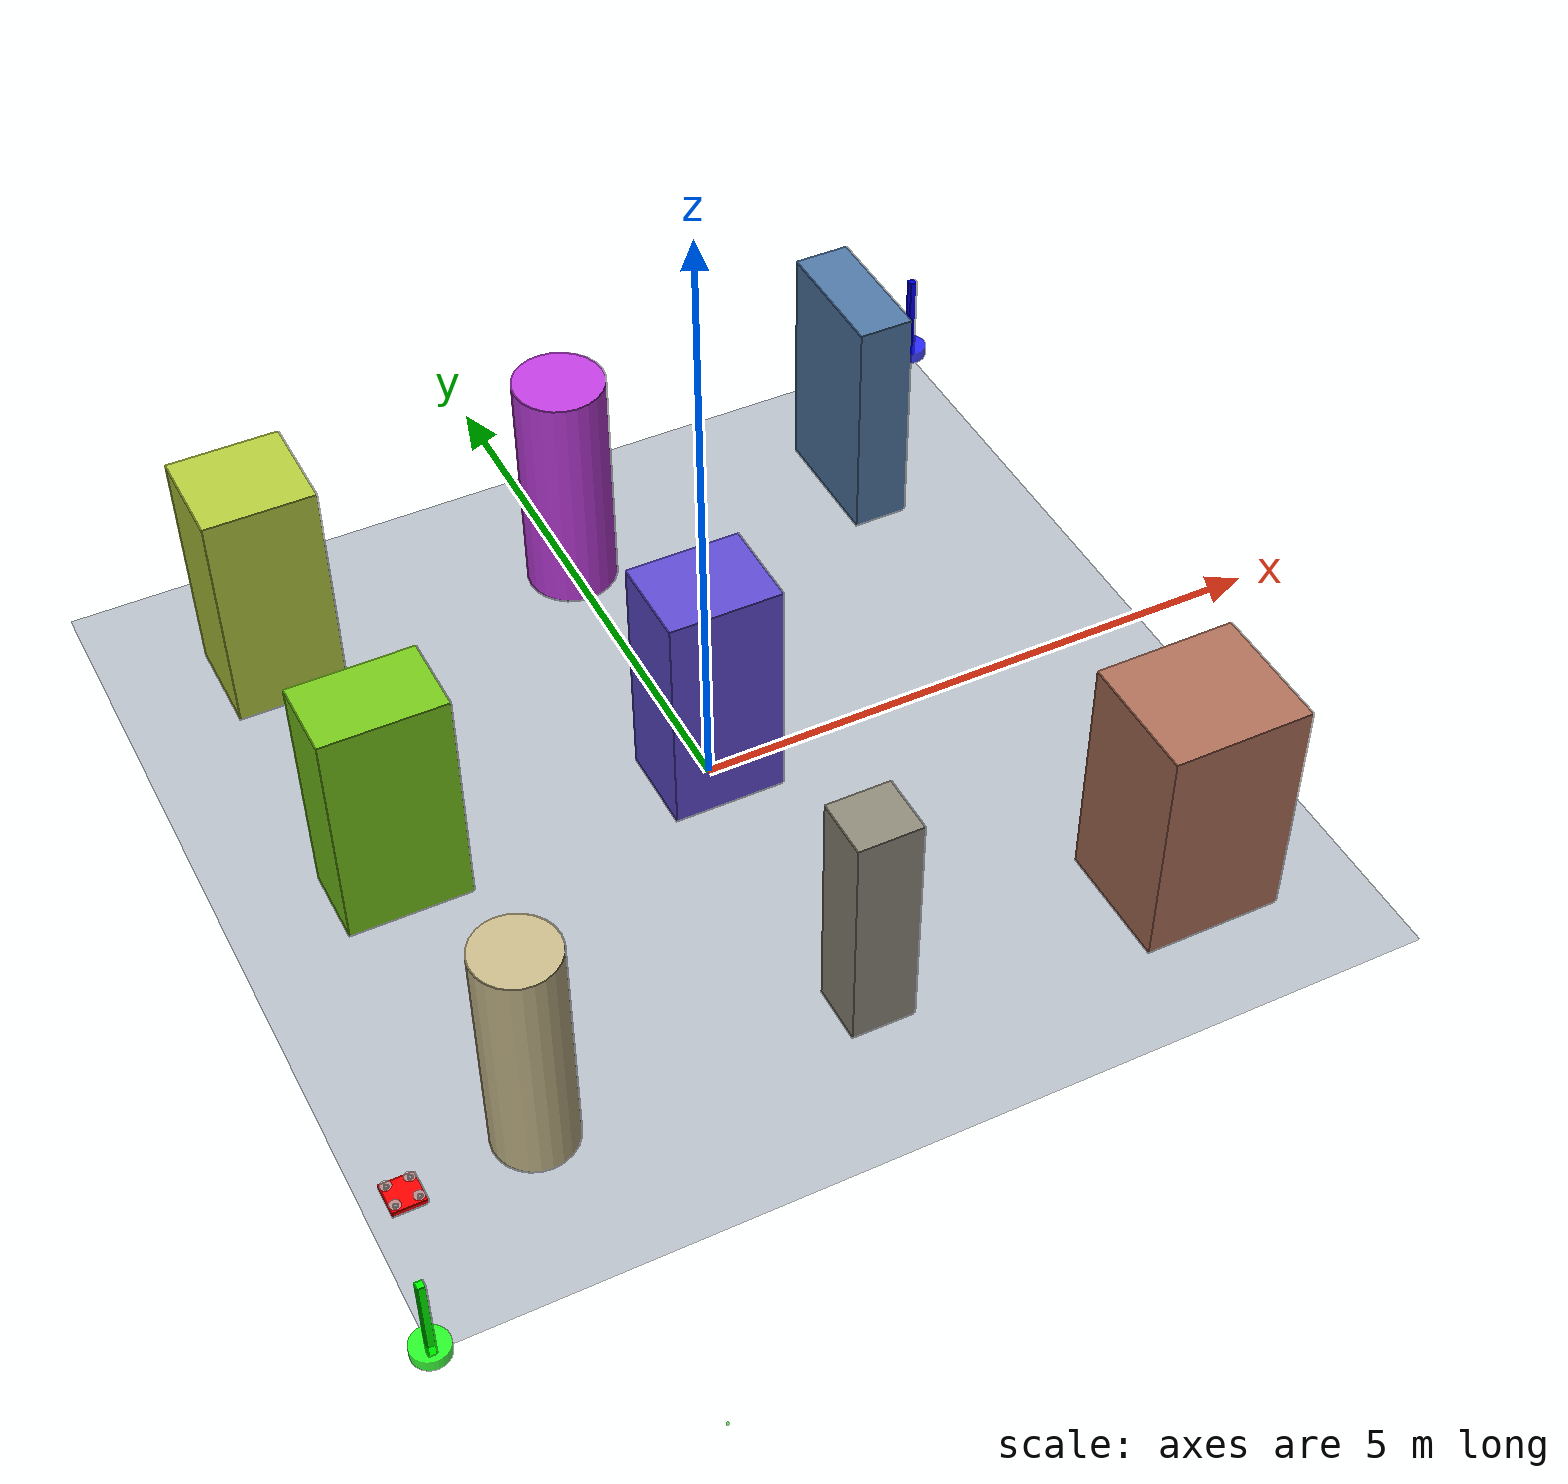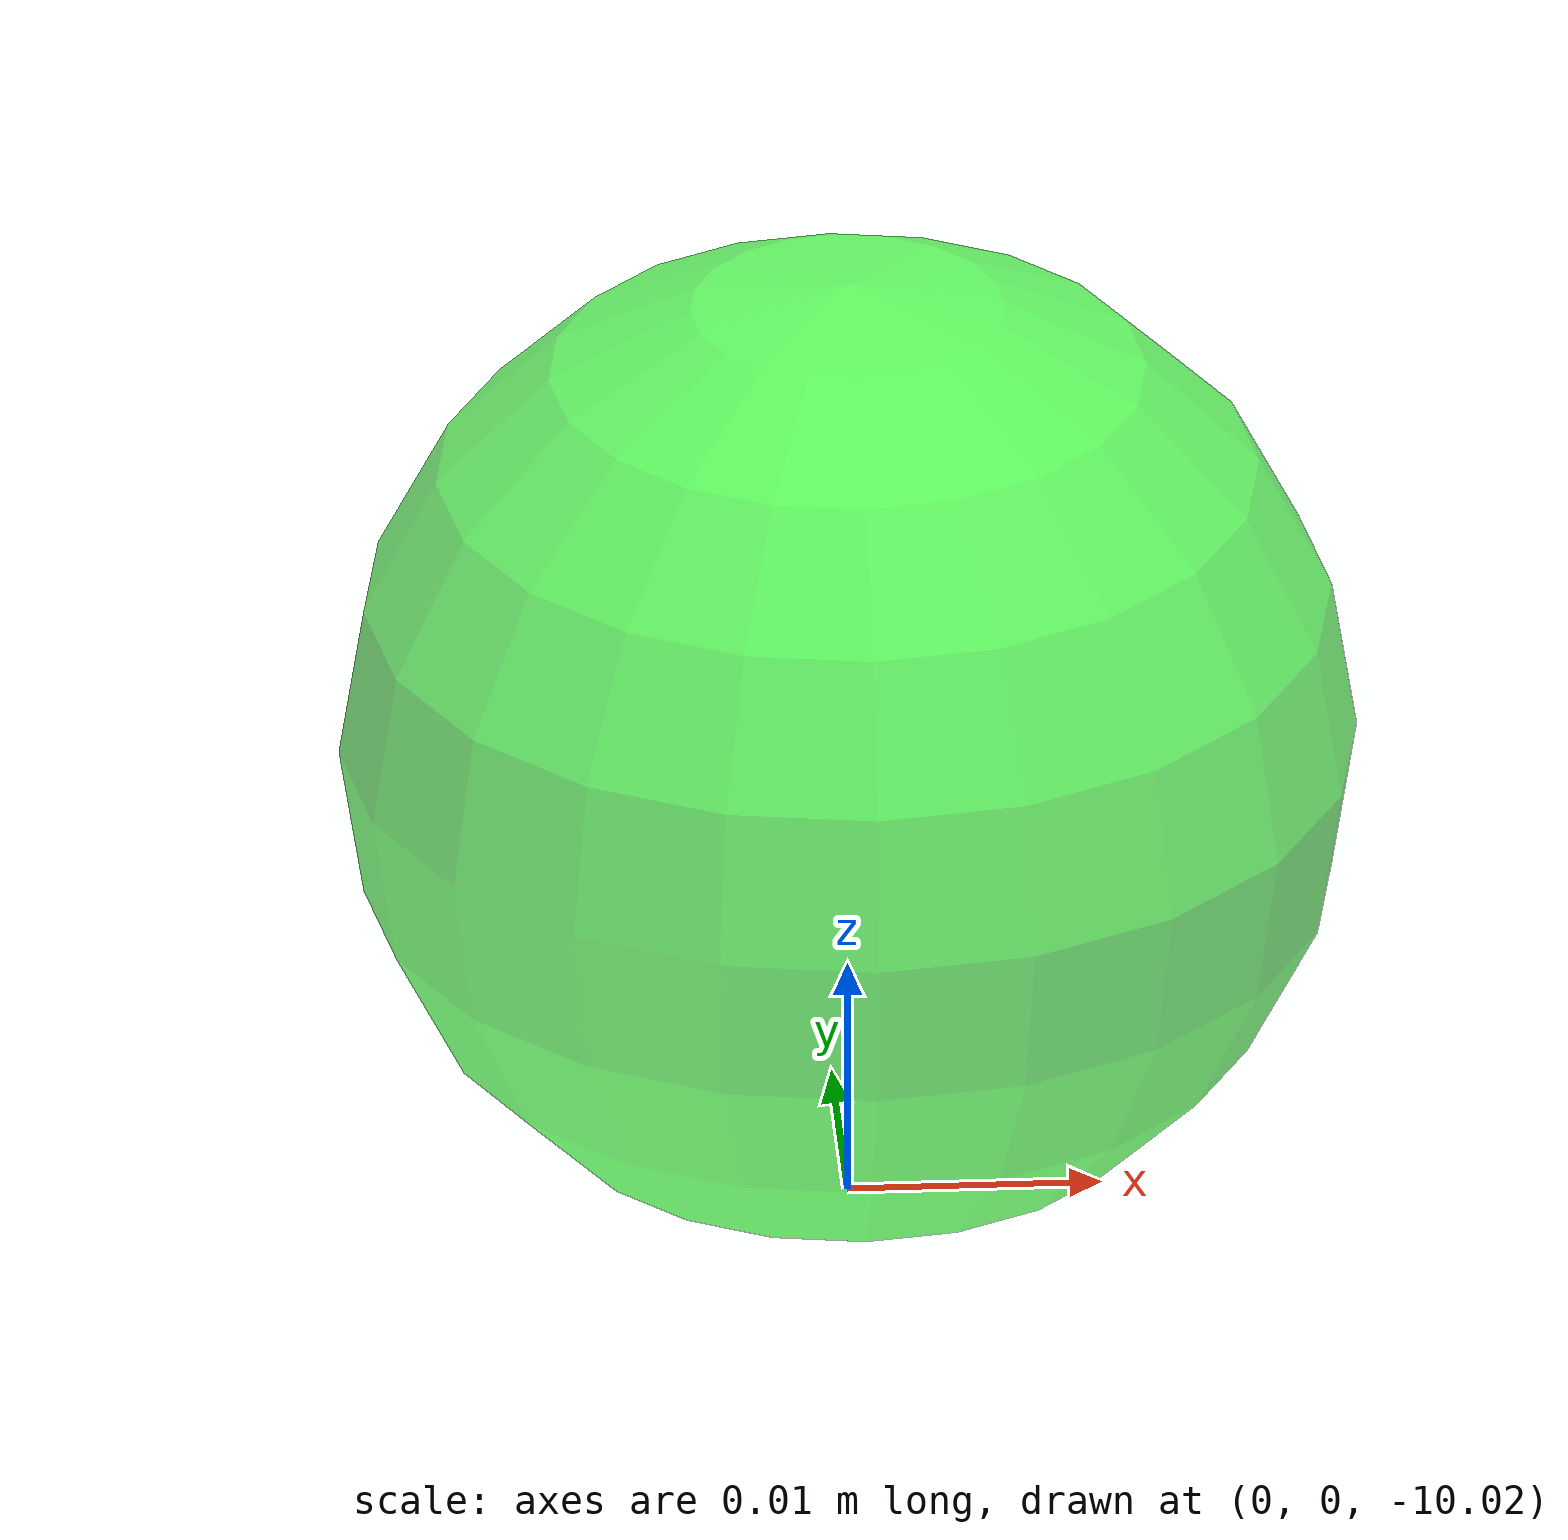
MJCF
<mujoco model="complex_uav_env">
  <compiler angle="degree" coordinate="local" inertiafromgeom="true"/>
  <option integrator="RK4" timestep="0.01"/>

  <visual>
    <headlight diffuse="0.6 0.6 0.6" ambient="0.3 0.3 0.3"/>
    <rgba haze="0.15 0.25 0.35 1"/>
    <global offwidth="2560" offheight="1440"/>
  </visual>

  <asset>
    <texture type="skybox" builtin="gradient" rgb1="0.3 0.5 0.7" rgb2="0 0 0" width="512" height="3072"/>
    <texture name="grid" type="2d" builtin="checker" rgb1="0.1 0.2 0.3" rgb2="0.2 0.3 0.4" width="512" height="512"/>
    <material name="grid" texture="grid" texrepeat="1 1" reflectance="0.2"/>
  </asset>

  <worldbody>
    <!-- Ground plane -->
    <geom name="ground" type="plane" size="4.0 4.0 0.1" material="grid"/>
    <light name="light1" pos="0 0 4" dir="0 0 -1" diffuse="1 1 1"/>

    <!-- Start position marker (green) -->
    <geom name="start_marker" type="cylinder" size="0.15 0.05" pos="-4.0 -4.0 0.05" rgba="0 1 0 0.8"/>
    <geom name="start_pole" type="box" size="0.03 0.03 0.4" pos="-4.0 -4.0 0.4" rgba="0 1 0 1"/>

    <!-- Goal position marker (blue) -->
    <geom name="goal_marker" type="cylinder" size="0.15 0.05" pos="4.0 4.0 0.05" rgba="0 0 1 0.8"/>
    <geom name="goal_pole" type="box" size="0.03 0.03 0.4" pos="4.0 4.0 0.4" rgba="0 0 1 1"/>

    <!-- UAV starting position -->
    <body name="chassis" pos="-4.0 -4.0 1.8">
      <joint type="free" name="root"/>
      <geom type="box" size="0.12 0.12 0.02" rgba="1.0 0.0 0.0 1.0" mass="0.8"/>

      <!-- Propeller arms and motors -->
      <geom type="box" size="0.08 0.01 0.005" pos="0 0 0.01" rgba="0.3 0.3 0.3 1"/>
      <geom type="box" size="0.01 0.08 0.005" pos="0 0 0.01" rgba="0.3 0.3 0.3 1"/>

      <!-- Motor visual geometry -->
      <geom type="cylinder" size="0.015 0.02" pos="0.08 0.08 0.015" rgba="0.2 0.2 0.2 1"/>
      <geom type="cylinder" size="0.015 0.02" pos="-0.08 0.08 0.015" rgba="0.2 0.2 0.2 1"/>
      <geom type="cylinder" size="0.015 0.02" pos="0.08 -0.08 0.015" rgba="0.2 0.2 0.2 1"/>
      <geom type="cylinder" size="0.015 0.02" pos="-0.08 -0.08 0.015" rgba="0.2 0.2 0.2 1"/>

      <!-- Propellers -->
      <geom type="cylinder" size="0.04 0.002" pos="0.08 0.08 0.035" rgba="0.7 0.7 0.7 0.8"/>
      <geom type="cylinder" size="0.04 0.002" pos="-0.08 0.08 0.035" rgba="0.7 0.7 0.7 0.8"/>
      <geom type="cylinder" size="0.04 0.002" pos="0.08 -0.08 0.035" rgba="0.7 0.7 0.7 0.8"/>
      <geom type="cylinder" size="0.04 0.002" pos="-0.08 -0.08 0.035" rgba="0.7 0.7 0.7 0.8"/>

      <!-- Sites for motor force application -->
      <site name="motor1" pos="0.08 0.08 0" size="0.01"/>
      <site name="motor2" pos="-0.08 0.08 0" size="0.01"/>
      <site name="motor3" pos="0.08 -0.08 0" size="0.01"/>
      <site name="motor4" pos="-0.08 -0.08 0" size="0.01"/>

      <!-- Depth camera sensor -->
      <camera name="depth_camera" pos="0 0 -0.05" euler="0 90 0" fovy="90" mode="fixed"/>
    </body>
    <geom name="static_obs_0" type="box" size="0.2598506245133797 0.24718735039952314 1.0" pos="0.0 -2.666666666666667 1.0" rgba="0.545668511821507 0.5326843602851029 0.4714136041836875 1.0"/>
    <geom name="static_obs_1" type="box" size="0.5097215856573584 0.3344865980291905 1.0" pos="-2.666666666666667 0.0 1.0" rgba="0.4623854166754252 0.7742232053016128 0.10591800930484362 1.0"/>
    <geom name="static_obs_2" type="cylinder" size="0.3302009294828237 1.0" pos="-2.666666666666667 -2.666666666666667 1.0" rgba="0.7746324285509688 0.7200718220227148 0.5383668644227115 1.0"/>
    <geom name="static_obs_3" type="box" size="0.46835922626101195 0.37998668585072076 1.0" pos="0.0 0.0 1.0" rgba="0.36744950432165047 0.2900570084271563 0.807797283638425 1.0"/>
    <geom name="static_obs_4" type="box" size="0.2355849226254388 0.5773309787715005 1.0" pos="2.666666666666666 2.666666666666666 1.0" rgba="0.3100733593461267 0.46495306715853457 0.643556523237736 1.0"/>
    <geom name="static_obs_5" type="box" size="0.46269511263013013 0.4301652503014999 1.0" pos="-2.666666666666667 2.666666666666666 1.0" rgba="0.6980262519912378 0.7885998660213507 0.23661312331285045 1.0"/>
    <geom name="static_obs_6" type="cylinder" size="0.3837021786030431 1.0" pos="0.0 2.666666666666666 1.0" rgba="0.7477574658552838 0.23756319227890313 0.8665417283387605 1.0"/>
    <geom name="static_obs_7" type="box" size="0.5696854560441573 0.5318358022606693 1.0" pos="2.666666666666666 -2.666666666666667 1.0" rgba="0.6740412731399996 0.430494362297975 0.3476743825001492 1.0"/>
    <geom name="trail_0" type="sphere" size="0.02" pos="0 0 -10" rgba="0 1 0 0.6" contype="0" conaffinity="0"/>
    <geom name="trail_1" type="sphere" size="0.02" pos="0 0 -10" rgba="0 1 0 0.6" contype="0" conaffinity="0"/>
    <geom name="trail_2" type="sphere" size="0.02" pos="0 0 -10" rgba="0 1 0 0.6" contype="0" conaffinity="0"/>
    <geom name="trail_3" type="sphere" size="0.02" pos="0 0 -10" rgba="0 1 0 0.6" contype="0" conaffinity="0"/>
    <geom name="trail_4" type="sphere" size="0.02" pos="0 0 -10" rgba="0 1 0 0.6" contype="0" conaffinity="0"/>
    <geom name="trail_5" type="sphere" size="0.02" pos="0 0 -10" rgba="0 1 0 0.6" contype="0" conaffinity="0"/>
    <geom name="trail_6" type="sphere" size="0.02" pos="0 0 -10" rgba="0 1 0 0.6" contype="0" conaffinity="0"/>
    <geom name="trail_7" type="sphere" size="0.02" pos="0 0 -10" rgba="0 1 0 0.6" contype="0" conaffinity="0"/>
    <geom name="trail_8" type="sphere" size="0.02" pos="0 0 -10" rgba="0 1 0 0.6" contype="0" conaffinity="0"/>
    <geom name="trail_9" type="sphere" size="0.02" pos="0 0 -10" rgba="0 1 0 0.6" contype="0" conaffinity="0"/>
    <geom name="trail_10" type="sphere" size="0.02" pos="0 0 -10" rgba="0 1 0 0.6" contype="0" conaffinity="0"/>
    <geom name="trail_11" type="sphere" size="0.02" pos="0 0 -10" rgba="0 1 0 0.6" contype="0" conaffinity="0"/>
    <geom name="trail_12" type="sphere" size="0.02" pos="0 0 -10" rgba="0 1 0 0.6" contype="0" conaffinity="0"/>
    <geom name="trail_13" type="sphere" size="0.02" pos="0 0 -10" rgba="0 1 0 0.6" contype="0" conaffinity="0"/>
    <geom name="trail_14" type="sphere" size="0.02" pos="0 0 -10" rgba="0 1 0 0.6" contype="0" conaffinity="0"/>
    <geom name="trail_15" type="sphere" size="0.02" pos="0 0 -10" rgba="0 1 0 0.6" contype="0" conaffinity="0"/>
    <geom name="trail_16" type="sphere" size="0.02" pos="0 0 -10" rgba="0 1 0 0.6" contype="0" conaffinity="0"/>
    <geom name="trail_17" type="sphere" size="0.02" pos="0 0 -10" rgba="0 1 0 0.6" contype="0" conaffinity="0"/>
    <geom name="trail_18" type="sphere" size="0.02" pos="0 0 -10" rgba="0 1 0 0.6" contype="0" conaffinity="0"/>
    <geom name="trail_19" type="sphere" size="0.02" pos="0 0 -10" rgba="0 1 0 0.6" contype="0" conaffinity="0"/>
    <geom name="trail_20" type="sphere" size="0.02" pos="0 0 -10" rgba="0 1 0 0.6" contype="0" conaffinity="0"/>
    <geom name="trail_21" type="sphere" size="0.02" pos="0 0 -10" rgba="0 1 0 0.6" contype="0" conaffinity="0"/>
    <geom name="trail_22" type="sphere" size="0.02" pos="0 0 -10" rgba="0 1 0 0.6" contype="0" conaffinity="0"/>
    <geom name="trail_23" type="sphere" size="0.02" pos="0 0 -10" rgba="0 1 0 0.6" contype="0" conaffinity="0"/>
    <geom name="trail_24" type="sphere" size="0.02" pos="0 0 -10" rgba="0 1 0 0.6" contype="0" conaffinity="0"/>
    <geom name="trail_25" type="sphere" size="0.02" pos="0 0 -10" rgba="0 1 0 0.6" contype="0" conaffinity="0"/>
    <geom name="trail_26" type="sphere" size="0.02" pos="0 0 -10" rgba="0 1 0 0.6" contype="0" conaffinity="0"/>
    <geom name="trail_27" type="sphere" size="0.02" pos="0 0 -10" rgba="0 1 0 0.6" contype="0" conaffinity="0"/>
    <geom name="trail_28" type="sphere" size="0.02" pos="0 0 -10" rgba="0 1 0 0.6" contype="0" conaffinity="0"/>
    <geom name="trail_29" type="sphere" size="0.02" pos="0 0 -10" rgba="0 1 0 0.6" contype="0" conaffinity="0"/>
    <geom name="trail_30" type="sphere" size="0.02" pos="0 0 -10" rgba="0 1 0 0.6" contype="0" conaffinity="0"/>
    <geom name="trail_31" type="sphere" size="0.02" pos="0 0 -10" rgba="0 1 0 0.6" contype="0" conaffinity="0"/>
    <geom name="trail_32" type="sphere" size="0.02" pos="0 0 -10" rgba="0 1 0 0.6" contype="0" conaffinity="0"/>
    <geom name="trail_33" type="sphere" size="0.02" pos="0 0 -10" rgba="0 1 0 0.6" contype="0" conaffinity="0"/>
    <geom name="trail_34" type="sphere" size="0.02" pos="0 0 -10" rgba="0 1 0 0.6" contype="0" conaffinity="0"/>
    <geom name="trail_35" type="sphere" size="0.02" pos="0 0 -10" rgba="0 1 0 0.6" contype="0" conaffinity="0"/>
    <geom name="trail_36" type="sphere" size="0.02" pos="0 0 -10" rgba="0 1 0 0.6" contype="0" conaffinity="0"/>
    <geom name="trail_37" type="sphere" size="0.02" pos="0 0 -10" rgba="0 1 0 0.6" contype="0" conaffinity="0"/>
    <geom name="trail_38" type="sphere" size="0.02" pos="0 0 -10" rgba="0 1 0 0.6" contype="0" conaffinity="0"/>
    <geom name="trail_39" type="sphere" size="0.02" pos="0 0 -10" rgba="0 1 0 0.6" contype="0" conaffinity="0"/>
    <geom name="trail_40" type="sphere" size="0.02" pos="0 0 -10" rgba="0 1 0 0.6" contype="0" conaffinity="0"/>
    <geom name="trail_41" type="sphere" size="0.02" pos="0 0 -10" rgba="0 1 0 0.6" contype="0" conaffinity="0"/>
    <geom name="trail_42" type="sphere" size="0.02" pos="0 0 -10" rgba="0 1 0 0.6" contype="0" conaffinity="0"/>
    <geom name="trail_43" type="sphere" size="0.02" pos="0 0 -10" rgba="0 1 0 0.6" contype="0" conaffinity="0"/>
    <geom name="trail_44" type="sphere" size="0.02" pos="0 0 -10" rgba="0 1 0 0.6" contype="0" conaffinity="0"/>
    <geom name="trail_45" type="sphere" size="0.02" pos="0 0 -10" rgba="0 1 0 0.6" contype="0" conaffinity="0"/>
    <geom name="trail_46" type="sphere" size="0.02" pos="0 0 -10" rgba="0 1 0 0.6" contype="0" conaffinity="0"/>
    <geom name="trail_47" type="sphere" size="0.02" pos="0 0 -10" rgba="0 1 0 0.6" contype="0" conaffinity="0"/>
    <geom name="trail_48" type="sphere" size="0.02" pos="0 0 -10" rgba="0 1 0 0.6" contype="0" conaffinity="0"/>
    <geom name="trail_49" type="sphere" size="0.02" pos="0 0 -10" rgba="0 1 0 0.6" contype="0" conaffinity="0"/>
    <geom name="trail_50" type="sphere" size="0.02" pos="0 0 -10" rgba="0 1 0 0.6" contype="0" conaffinity="0"/>
    <geom name="trail_51" type="sphere" size="0.02" pos="0 0 -10" rgba="0 1 0 0.6" contype="0" conaffinity="0"/>
    <geom name="trail_52" type="sphere" size="0.02" pos="0 0 -10" rgba="0 1 0 0.6" contype="0" conaffinity="0"/>
    <geom name="trail_53" type="sphere" size="0.02" pos="0 0 -10" rgba="0 1 0 0.6" contype="0" conaffinity="0"/>
    <geom name="trail_54" type="sphere" size="0.02" pos="0 0 -10" rgba="0 1 0 0.6" contype="0" conaffinity="0"/>
    <geom name="trail_55" type="sphere" size="0.02" pos="0 0 -10" rgba="0 1 0 0.6" contype="0" conaffinity="0"/>
    <geom name="trail_56" type="sphere" size="0.02" pos="0 0 -10" rgba="0 1 0 0.6" contype="0" conaffinity="0"/>
    <geom name="trail_57" type="sphere" size="0.02" pos="0 0 -10" rgba="0 1 0 0.6" contype="0" conaffinity="0"/>
    <geom name="trail_58" type="sphere" size="0.02" pos="0 0 -10" rgba="0 1 0 0.6" contype="0" conaffinity="0"/>
    <geom name="trail_59" type="sphere" size="0.02" pos="0 0 -10" rgba="0 1 0 0.6" contype="0" conaffinity="0"/>
    <geom name="trail_60" type="sphere" size="0.02" pos="0 0 -10" rgba="0 1 0 0.6" contype="0" conaffinity="0"/>
    <geom name="trail_61" type="sphere" size="0.02" pos="0 0 -10" rgba="0 1 0 0.6" contype="0" conaffinity="0"/>
    <geom name="trail_62" type="sphere" size="0.02" pos="0 0 -10" rgba="0 1 0 0.6" contype="0" conaffinity="0"/>
    <geom name="trail_63" type="sphere" size="0.02" pos="0 0 -10" rgba="0 1 0 0.6" contype="0" conaffinity="0"/>
    <geom name="trail_64" type="sphere" size="0.02" pos="0 0 -10" rgba="0 1 0 0.6" contype="0" conaffinity="0"/>
    <geom name="trail_65" type="sphere" size="0.02" pos="0 0 -10" rgba="0 1 0 0.6" contype="0" conaffinity="0"/>
    <geom name="trail_66" type="sphere" size="0.02" pos="0 0 -10" rgba="0 1 0 0.6" contype="0" conaffinity="0"/>
    <geom name="trail_67" type="sphere" size="0.02" pos="0 0 -10" rgba="0 1 0 0.6" contype="0" conaffinity="0"/>
    <geom name="trail_68" type="sphere" size="0.02" pos="0 0 -10" rgba="0 1 0 0.6" contype="0" conaffinity="0"/>
    <geom name="trail_69" type="sphere" size="0.02" pos="0 0 -10" rgba="0 1 0 0.6" contype="0" conaffinity="0"/>
    <geom name="trail_70" type="sphere" size="0.02" pos="0 0 -10" rgba="0 1 0 0.6" contype="0" conaffinity="0"/>
    <geom name="trail_71" type="sphere" size="0.02" pos="0 0 -10" rgba="0 1 0 0.6" contype="0" conaffinity="0"/>
    <geom name="trail_72" type="sphere" size="0.02" pos="0 0 -10" rgba="0 1 0 0.6" contype="0" conaffinity="0"/>
    <geom name="trail_73" type="sphere" size="0.02" pos="0 0 -10" rgba="0 1 0 0.6" contype="0" conaffinity="0"/>
    <geom name="trail_74" type="sphere" size="0.02" pos="0 0 -10" rgba="0 1 0 0.6" contype="0" conaffinity="0"/>
    <geom name="trail_75" type="sphere" size="0.02" pos="0 0 -10" rgba="0 1 0 0.6" contype="0" conaffinity="0"/>
    <geom name="trail_76" type="sphere" size="0.02" pos="0 0 -10" rgba="0 1 0 0.6" contype="0" conaffinity="0"/>
    <geom name="trail_77" type="sphere" size="0.02" pos="0 0 -10" rgba="0 1 0 0.6" contype="0" conaffinity="0"/>
    <geom name="trail_78" type="sphere" size="0.02" pos="0 0 -10" rgba="0 1 0 0.6" contype="0" conaffinity="0"/>
    <geom name="trail_79" type="sphere" size="0.02" pos="0 0 -10" rgba="0 1 0 0.6" contype="0" conaffinity="0"/>
    <geom name="trail_80" type="sphere" size="0.02" pos="0 0 -10" rgba="0 1 0 0.6" contype="0" conaffinity="0"/>
    <geom name="trail_81" type="sphere" size="0.02" pos="0 0 -10" rgba="0 1 0 0.6" contype="0" conaffinity="0"/>
    <geom name="trail_82" type="sphere" size="0.02" pos="0 0 -10" rgba="0 1 0 0.6" contype="0" conaffinity="0"/>
    <geom name="trail_83" type="sphere" size="0.02" pos="0 0 -10" rgba="0 1 0 0.6" contype="0" conaffinity="0"/>
    <geom name="trail_84" type="sphere" size="0.02" pos="0 0 -10" rgba="0 1 0 0.6" contype="0" conaffinity="0"/>
    <geom name="trail_85" type="sphere" size="0.02" pos="0 0 -10" rgba="0 1 0 0.6" contype="0" conaffinity="0"/>
    <geom name="trail_86" type="sphere" size="0.02" pos="0 0 -10" rgba="0 1 0 0.6" contype="0" conaffinity="0"/>
    <geom name="trail_87" type="sphere" size="0.02" pos="0 0 -10" rgba="0 1 0 0.6" contype="0" conaffinity="0"/>
    <geom name="trail_88" type="sphere" size="0.02" pos="0 0 -10" rgba="0 1 0 0.6" contype="0" conaffinity="0"/>
    <geom name="trail_89" type="sphere" size="0.02" pos="0 0 -10" rgba="0 1 0 0.6" contype="0" conaffinity="0"/>
    <geom name="trail_90" type="sphere" size="0.02" pos="0 0 -10" rgba="0 1 0 0.6" contype="0" conaffinity="0"/>
    <geom name="trail_91" type="sphere" size="0.02" pos="0 0 -10" rgba="0 1 0 0.6" contype="0" conaffinity="0"/>
    <geom name="trail_92" type="sphere" size="0.02" pos="0 0 -10" rgba="0 1 0 0.6" contype="0" conaffinity="0"/>
    <geom name="trail_93" type="sphere" size="0.02" pos="0 0 -10" rgba="0 1 0 0.6" contype="0" conaffinity="0"/>
    <geom name="trail_94" type="sphere" size="0.02" pos="0 0 -10" rgba="0 1 0 0.6" contype="0" conaffinity="0"/>
    <geom name="trail_95" type="sphere" size="0.02" pos="0 0 -10" rgba="0 1 0 0.6" contype="0" conaffinity="0"/>
    <geom name="trail_96" type="sphere" size="0.02" pos="0 0 -10" rgba="0 1 0 0.6" contype="0" conaffinity="0"/>
    <geom name="trail_97" type="sphere" size="0.02" pos="0 0 -10" rgba="0 1 0 0.6" contype="0" conaffinity="0"/>
    <geom name="trail_98" type="sphere" size="0.02" pos="0 0 -10" rgba="0 1 0 0.6" contype="0" conaffinity="0"/>
    <geom name="trail_99" type="sphere" size="0.02" pos="0 0 -10" rgba="0 1 0 0.6" contype="0" conaffinity="0"/>
    <geom name="trail_100" type="sphere" size="0.02" pos="0 0 -10" rgba="0 1 0 0.6" contype="0" conaffinity="0"/>
    <geom name="trail_101" type="sphere" size="0.02" pos="0 0 -10" rgba="0 1 0 0.6" contype="0" conaffinity="0"/>
    <geom name="trail_102" type="sphere" size="0.02" pos="0 0 -10" rgba="0 1 0 0.6" contype="0" conaffinity="0"/>
    <geom name="trail_103" type="sphere" size="0.02" pos="0 0 -10" rgba="0 1 0 0.6" contype="0" conaffinity="0"/>
    <geom name="trail_104" type="sphere" size="0.02" pos="0 0 -10" rgba="0 1 0 0.6" contype="0" conaffinity="0"/>
    <geom name="trail_105" type="sphere" size="0.02" pos="0 0 -10" rgba="0 1 0 0.6" contype="0" conaffinity="0"/>
    <geom name="trail_106" type="sphere" size="0.02" pos="0 0 -10" rgba="0 1 0 0.6" contype="0" conaffinity="0"/>
    <geom name="trail_107" type="sphere" size="0.02" pos="0 0 -10" rgba="0 1 0 0.6" contype="0" conaffinity="0"/>
    <geom name="trail_108" type="sphere" size="0.02" pos="0 0 -10" rgba="0 1 0 0.6" contype="0" conaffinity="0"/>
    <geom name="trail_109" type="sphere" size="0.02" pos="0 0 -10" rgba="0 1 0 0.6" contype="0" conaffinity="0"/>
    <geom name="trail_110" type="sphere" size="0.02" pos="0 0 -10" rgba="0 1 0 0.6" contype="0" conaffinity="0"/>
    <geom name="trail_111" type="sphere" size="0.02" pos="0 0 -10" rgba="0 1 0 0.6" contype="0" conaffinity="0"/>
    <geom name="trail_112" type="sphere" size="0.02" pos="0 0 -10" rgba="0 1 0 0.6" contype="0" conaffinity="0"/>
    <geom name="trail_113" type="sphere" size="0.02" pos="0 0 -10" rgba="0 1 0 0.6" contype="0" conaffinity="0"/>
    <geom name="trail_114" type="sphere" size="0.02" pos="0 0 -10" rgba="0 1 0 0.6" contype="0" conaffinity="0"/>
    <geom name="trail_115" type="sphere" size="0.02" pos="0 0 -10" rgba="0 1 0 0.6" contype="0" conaffinity="0"/>
    <geom name="trail_116" type="sphere" size="0.02" pos="0 0 -10" rgba="0 1 0 0.6" contype="0" conaffinity="0"/>
    <geom name="trail_117" type="sphere" size="0.02" pos="0 0 -10" rgba="0 1 0 0.6" contype="0" conaffinity="0"/>
    <geom name="trail_118" type="sphere" size="0.02" pos="0 0 -10" rgba="0 1 0 0.6" contype="0" conaffinity="0"/>
    <geom name="trail_119" type="sphere" size="0.02" pos="0 0 -10" rgba="0 1 0 0.6" contype="0" conaffinity="0"/>
    <geom name="trail_120" type="sphere" size="0.02" pos="0 0 -10" rgba="0 1 0 0.6" contype="0" conaffinity="0"/>
    <geom name="trail_121" type="sphere" size="0.02" pos="0 0 -10" rgba="0 1 0 0.6" contype="0" conaffinity="0"/>
    <geom name="trail_122" type="sphere" size="0.02" pos="0 0 -10" rgba="0 1 0 0.6" contype="0" conaffinity="0"/>
    <geom name="trail_123" type="sphere" size="0.02" pos="0 0 -10" rgba="0 1 0 0.6" contype="0" conaffinity="0"/>
    <geom name="trail_124" type="sphere" size="0.02" pos="0 0 -10" rgba="0 1 0 0.6" contype="0" conaffinity="0"/>
    <geom name="trail_125" type="sphere" size="0.02" pos="0 0 -10" rgba="0 1 0 0.6" contype="0" conaffinity="0"/>
    <geom name="trail_126" type="sphere" size="0.02" pos="0 0 -10" rgba="0 1 0 0.6" contype="0" conaffinity="0"/>
    <geom name="trail_127" type="sphere" size="0.02" pos="0 0 -10" rgba="0 1 0 0.6" contype="0" conaffinity="0"/>
    <geom name="trail_128" type="sphere" size="0.02" pos="0 0 -10" rgba="0 1 0 0.6" contype="0" conaffinity="0"/>
    <geom name="trail_129" type="sphere" size="0.02" pos="0 0 -10" rgba="0 1 0 0.6" contype="0" conaffinity="0"/>
    <geom name="trail_130" type="sphere" size="0.02" pos="0 0 -10" rgba="0 1 0 0.6" contype="0" conaffinity="0"/>
    <geom name="trail_131" type="sphere" size="0.02" pos="0 0 -10" rgba="0 1 0 0.6" contype="0" conaffinity="0"/>
    <geom name="trail_132" type="sphere" size="0.02" pos="0 0 -10" rgba="0 1 0 0.6" contype="0" conaffinity="0"/>
    <geom name="trail_133" type="sphere" size="0.02" pos="0 0 -10" rgba="0 1 0 0.6" contype="0" conaffinity="0"/>
    <geom name="trail_134" type="sphere" size="0.02" pos="0 0 -10" rgba="0 1 0 0.6" contype="0" conaffinity="0"/>
    <geom name="trail_135" type="sphere" size="0.02" pos="0 0 -10" rgba="0 1 0 0.6" contype="0" conaffinity="0"/>
    <geom name="trail_136" type="sphere" size="0.02" pos="0 0 -10" rgba="0 1 0 0.6" contype="0" conaffinity="0"/>
    <geom name="trail_137" type="sphere" size="0.02" pos="0 0 -10" rgba="0 1 0 0.6" contype="0" conaffinity="0"/>
    <geom name="trail_138" type="sphere" size="0.02" pos="0 0 -10" rgba="0 1 0 0.6" contype="0" conaffinity="0"/>
    <geom name="trail_139" type="sphere" size="0.02" pos="0 0 -10" rgba="0 1 0 0.6" contype="0" conaffinity="0"/>
    <geom name="trail_140" type="sphere" size="0.02" pos="0 0 -10" rgba="0 1 0 0.6" contype="0" conaffinity="0"/>
    <geom name="trail_141" type="sphere" size="0.02" pos="0 0 -10" rgba="0 1 0 0.6" contype="0" conaffinity="0"/>
    <geom name="trail_142" type="sphere" size="0.02" pos="0 0 -10" rgba="0 1 0 0.6" contype="0" conaffinity="0"/>
    <geom name="trail_143" type="sphere" size="0.02" pos="0 0 -10" rgba="0 1 0 0.6" contype="0" conaffinity="0"/>
    <geom name="trail_144" type="sphere" size="0.02" pos="0 0 -10" rgba="0 1 0 0.6" contype="0" conaffinity="0"/>
    <geom name="trail_145" type="sphere" size="0.02" pos="0 0 -10" rgba="0 1 0 0.6" contype="0" conaffinity="0"/>
    <geom name="trail_146" type="sphere" size="0.02" pos="0 0 -10" rgba="0 1 0 0.6" contype="0" conaffinity="0"/>
    <geom name="trail_147" type="sphere" size="0.02" pos="0 0 -10" rgba="0 1 0 0.6" contype="0" conaffinity="0"/>
    <geom name="trail_148" type="sphere" size="0.02" pos="0 0 -10" rgba="0 1 0 0.6" contype="0" conaffinity="0"/>
    <geom name="trail_149" type="sphere" size="0.02" pos="0 0 -10" rgba="0 1 0 0.6" contype="0" conaffinity="0"/>
    <geom name="trail_150" type="sphere" size="0.02" pos="0 0 -10" rgba="0 1 0 0.6" contype="0" conaffinity="0"/>
    <geom name="trail_151" type="sphere" size="0.02" pos="0 0 -10" rgba="0 1 0 0.6" contype="0" conaffinity="0"/>
    <geom name="trail_152" type="sphere" size="0.02" pos="0 0 -10" rgba="0 1 0 0.6" contype="0" conaffinity="0"/>
    <geom name="trail_153" type="sphere" size="0.02" pos="0 0 -10" rgba="0 1 0 0.6" contype="0" conaffinity="0"/>
    <geom name="trail_154" type="sphere" size="0.02" pos="0 0 -10" rgba="0 1 0 0.6" contype="0" conaffinity="0"/>
    <geom name="trail_155" type="sphere" size="0.02" pos="0 0 -10" rgba="0 1 0 0.6" contype="0" conaffinity="0"/>
    <geom name="trail_156" type="sphere" size="0.02" pos="0 0 -10" rgba="0 1 0 0.6" contype="0" conaffinity="0"/>
    <geom name="trail_157" type="sphere" size="0.02" pos="0 0 -10" rgba="0 1 0 0.6" contype="0" conaffinity="0"/>
    <geom name="trail_158" type="sphere" size="0.02" pos="0 0 -10" rgba="0 1 0 0.6" contype="0" conaffinity="0"/>
    <geom name="trail_159" type="sphere" size="0.02" pos="0 0 -10" rgba="0 1 0 0.6" contype="0" conaffinity="0"/>
    <geom name="trail_160" type="sphere" size="0.02" pos="0 0 -10" rgba="0 1 0 0.6" contype="0" conaffinity="0"/>
    <geom name="trail_161" type="sphere" size="0.02" pos="0 0 -10" rgba="0 1 0 0.6" contype="0" conaffinity="0"/>
    <geom name="trail_162" type="sphere" size="0.02" pos="0 0 -10" rgba="0 1 0 0.6" contype="0" conaffinity="0"/>
    <geom name="trail_163" type="sphere" size="0.02" pos="0 0 -10" rgba="0 1 0 0.6" contype="0" conaffinity="0"/>
    <geom name="trail_164" type="sphere" size="0.02" pos="0 0 -10" rgba="0 1 0 0.6" contype="0" conaffinity="0"/>
    <geom name="trail_165" type="sphere" size="0.02" pos="0 0 -10" rgba="0 1 0 0.6" contype="0" conaffinity="0"/>
    <geom name="trail_166" type="sphere" size="0.02" pos="0 0 -10" rgba="0 1 0 0.6" contype="0" conaffinity="0"/>
    <geom name="trail_167" type="sphere" size="0.02" pos="0 0 -10" rgba="0 1 0 0.6" contype="0" conaffinity="0"/>
    <geom name="trail_168" type="sphere" size="0.02" pos="0 0 -10" rgba="0 1 0 0.6" contype="0" conaffinity="0"/>
    <geom name="trail_169" type="sphere" size="0.02" pos="0 0 -10" rgba="0 1 0 0.6" contype="0" conaffinity="0"/>
    <geom name="trail_170" type="sphere" size="0.02" pos="0 0 -10" rgba="0 1 0 0.6" contype="0" conaffinity="0"/>
    <geom name="trail_171" type="sphere" size="0.02" pos="0 0 -10" rgba="0 1 0 0.6" contype="0" conaffinity="0"/>
    <geom name="trail_172" type="sphere" size="0.02" pos="0 0 -10" rgba="0 1 0 0.6" contype="0" conaffinity="0"/>
    <geom name="trail_173" type="sphere" size="0.02" pos="0 0 -10" rgba="0 1 0 0.6" contype="0" conaffinity="0"/>
    <geom name="trail_174" type="sphere" size="0.02" pos="0 0 -10" rgba="0 1 0 0.6" contype="0" conaffinity="0"/>
    <geom name="trail_175" type="sphere" size="0.02" pos="0 0 -10" rgba="0 1 0 0.6" contype="0" conaffinity="0"/>
    <geom name="trail_176" type="sphere" size="0.02" pos="0 0 -10" rgba="0 1 0 0.6" contype="0" conaffinity="0"/>
    <geom name="trail_177" type="sphere" size="0.02" pos="0 0 -10" rgba="0 1 0 0.6" contype="0" conaffinity="0"/>
    <geom name="trail_178" type="sphere" size="0.02" pos="0 0 -10" rgba="0 1 0 0.6" contype="0" conaffinity="0"/>
    <geom name="trail_179" type="sphere" size="0.02" pos="0 0 -10" rgba="0 1 0 0.6" contype="0" conaffinity="0"/>
    <geom name="trail_180" type="sphere" size="0.02" pos="0 0 -10" rgba="0 1 0 0.6" contype="0" conaffinity="0"/>
    <geom name="trail_181" type="sphere" size="0.02" pos="0 0 -10" rgba="0 1 0 0.6" contype="0" conaffinity="0"/>
    <geom name="trail_182" type="sphere" size="0.02" pos="0 0 -10" rgba="0 1 0 0.6" contype="0" conaffinity="0"/>
    <geom name="trail_183" type="sphere" size="0.02" pos="0 0 -10" rgba="0 1 0 0.6" contype="0" conaffinity="0"/>
    <geom name="trail_184" type="sphere" size="0.02" pos="0 0 -10" rgba="0 1 0 0.6" contype="0" conaffinity="0"/>
    <geom name="trail_185" type="sphere" size="0.02" pos="0 0 -10" rgba="0 1 0 0.6" contype="0" conaffinity="0"/>
    <geom name="trail_186" type="sphere" size="0.02" pos="0 0 -10" rgba="0 1 0 0.6" contype="0" conaffinity="0"/>
    <geom name="trail_187" type="sphere" size="0.02" pos="0 0 -10" rgba="0 1 0 0.6" contype="0" conaffinity="0"/>
    <geom name="trail_188" type="sphere" size="0.02" pos="0 0 -10" rgba="0 1 0 0.6" contype="0" conaffinity="0"/>
    <geom name="trail_189" type="sphere" size="0.02" pos="0 0 -10" rgba="0 1 0 0.6" contype="0" conaffinity="0"/>
    <geom name="trail_190" type="sphere" size="0.02" pos="0 0 -10" rgba="0 1 0 0.6" contype="0" conaffinity="0"/>
    <geom name="trail_191" type="sphere" size="0.02" pos="0 0 -10" rgba="0 1 0 0.6" contype="0" conaffinity="0"/>
    <geom name="trail_192" type="sphere" size="0.02" pos="0 0 -10" rgba="0 1 0 0.6" contype="0" conaffinity="0"/>
    <geom name="trail_193" type="sphere" size="0.02" pos="0 0 -10" rgba="0 1 0 0.6" contype="0" conaffinity="0"/>
    <geom name="trail_194" type="sphere" size="0.02" pos="0 0 -10" rgba="0 1 0 0.6" contype="0" conaffinity="0"/>
    <geom name="trail_195" type="sphere" size="0.02" pos="0 0 -10" rgba="0 1 0 0.6" contype="0" conaffinity="0"/>
    <geom name="trail_196" type="sphere" size="0.02" pos="0 0 -10" rgba="0 1 0 0.6" contype="0" conaffinity="0"/>
    <geom name="trail_197" type="sphere" size="0.02" pos="0 0 -10" rgba="0 1 0 0.6" contype="0" conaffinity="0"/>
    <geom name="trail_198" type="sphere" size="0.02" pos="0 0 -10" rgba="0 1 0 0.6" contype="0" conaffinity="0"/>
    <geom name="trail_199" type="sphere" size="0.02" pos="0 0 -10" rgba="0 1 0 0.6" contype="0" conaffinity="0"/>
  </worldbody>

  <sensor>
    <camera name="depth_sensor" camera="depth_camera"/>
  </sensor>

  <actuator>
    <motor name="m1" gear="0 0 1 0 0 0" site="motor1"/>
    <motor name="m2" gear="0 0 1 0 0 0" site="motor2"/>
    <motor name="m3" gear="0 0 1 0 0 0" site="motor3"/>
    <motor name="m4" gear="0 0 1 0 0 0" site="motor4"/>
  </actuator>
</mujoco>
